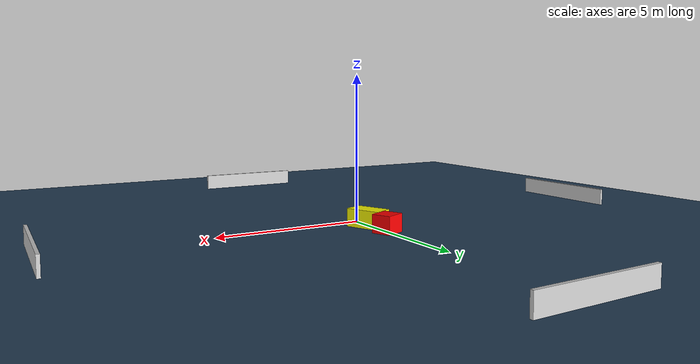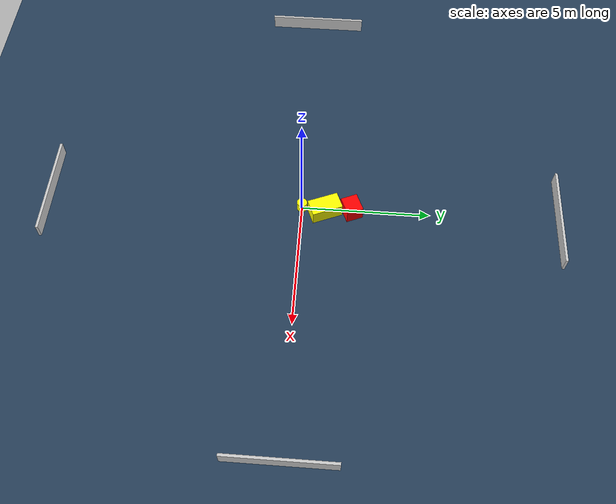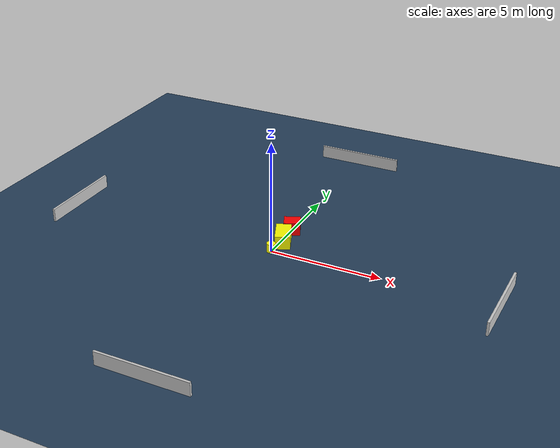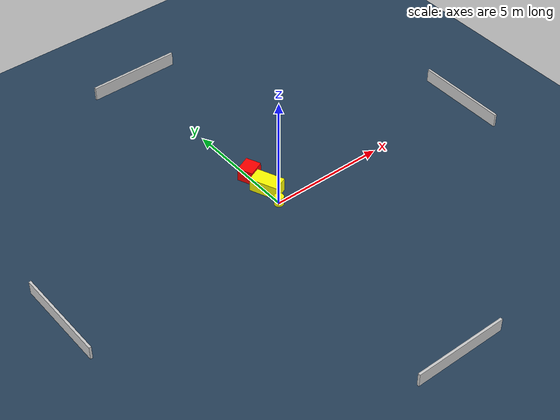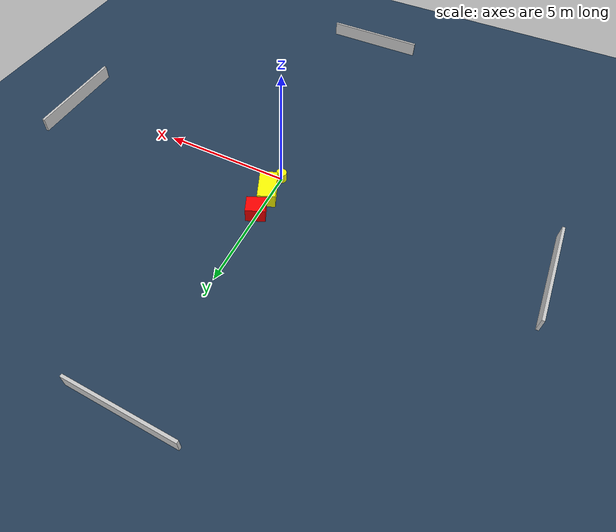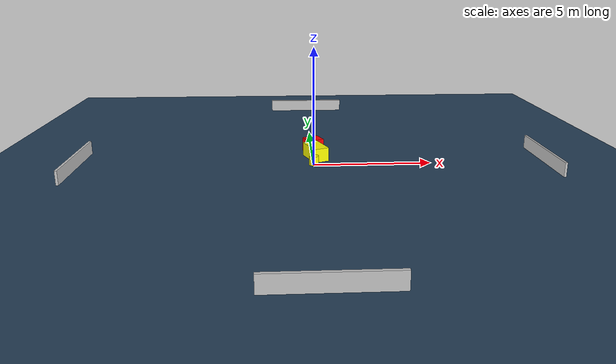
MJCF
<?xml version="1.0" ?>
<mujoco model="generated_environment">
  <option timestep="0.01" integrator="RK4" cone="elliptic"/>
  <default>
    <geom density="1"/>
  </default>
  <asset>
    <texture builtin="gradient" height="3072" name="skybox" rgb1="0.3 0.5 0.7" rgb2="0 0 0" type="skybox" width="512"/>
    <texture builtin="checker" height="300" name="groundplane" rgb1="0.2 0.3 0.4" rgb2="0.1 0.2 0.3" type="2d" width="300"/>
    <material name="groundplane" reflectance="0.2" texrepeat="5 5" texture="groundplane"/>
  </asset>
  <worldbody>
    <light dir="0 0 -1" directional="true" pos="0 0 1.5"/>
    <geom condim="3" friction="0.5 0.005 0.001" material="groundplane" name="floor" pos="0 0 0" size="0 0 0.05" type="plane"/>
    <body name="walls">
      <geom name="wall_1" condim="4" pos="-10.0 0.0 0.3" rgba="0.800000011920929 0.800000011920929 0.800000011920929 1.0" size="0.05 2.0 0.3" type="box"/>
      <geom name="wall_2" condim="4" pos="10.0 0.0 0.3" rgba="0.800000011920929 0.800000011920929 0.800000011920929 1.0" size="0.05 2.0 0.3" type="box"/>
      <geom name="wall_3" condim="4" pos="0.0 -10.0 0.3" rgba="0.800000011920929 0.800000011920929 0.800000011920929 1.0" size="2.0 0.05 0.3" type="box"/>
      <geom name="wall_4" condim="4" pos="0.0 10.0 0.3" rgba="0.800000011920929 0.800000011920929 0.800000011920929 1.0" size="2.0 0.05 0.3" type="box"/>
    </body>
    <body name="robot">
      <joint name="joint_x" type="slide" pos="0 0 0" axis="1 0 0"/>
      <joint name="joint_y" type="slide" pos="0 0 0" axis="0 1 0"/>
      <geom name="robot" type="cylinder" pos="0.0 0.0 0.2" size="0.2 0.2 0.0" mass="5.0" friction="1.0 0.005 0.0001" condim="4" rgba="1.0 1.0 0.0 1.0"/>
    </body>
    <body name="obstacle_1_movable">
      <geom name="obstacle_1_movable" condim="4" pos="0.1250047371950343 0.9052886239081444 0.3" euler="0 0 202.5816145158394" friction="0.0 0.005 0.001" rgba="1.0 1.0 0.0 1.0" size="0.33757075560708594 0.6066992128810594 0.3" type="box" mass="0.1"/>
      <joint type="free"/>
    </body>
    <body name="obstacle_2_static">
      <geom name="obstacle_2_static" condim="4" pos="0.05355185910489915 1.9484023630532714 0.3" euler="0 0 23.235727431560086" friction="0.0 0.005 0.001" rgba="1.0 0.0 0.0 1.0" size="0.3657049680184713 0.3286234345267122 0.3" type="box"/>
    </body>
  </worldbody>
  <actuator>
    <motor name="actuator_x" joint="joint_x" gear="1" ctrlrange="-1 1"/>
    <motor name="actuator_y" joint="joint_y" gear="1" ctrlrange="-1 1"/>
  </actuator>
</mujoco>
